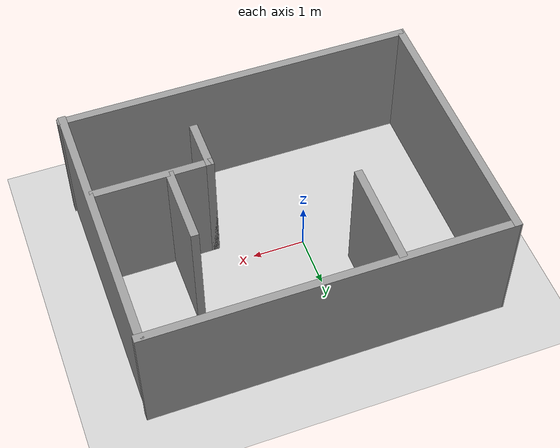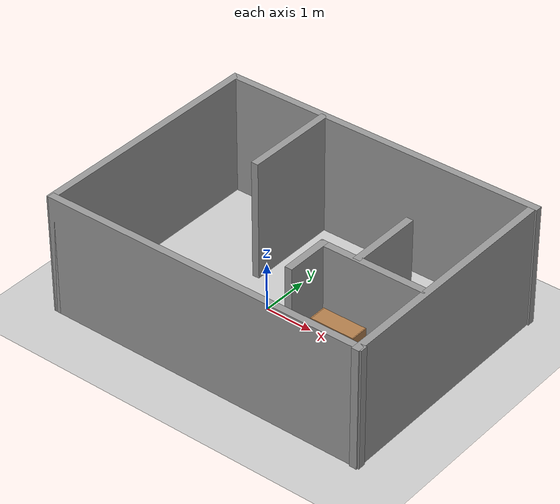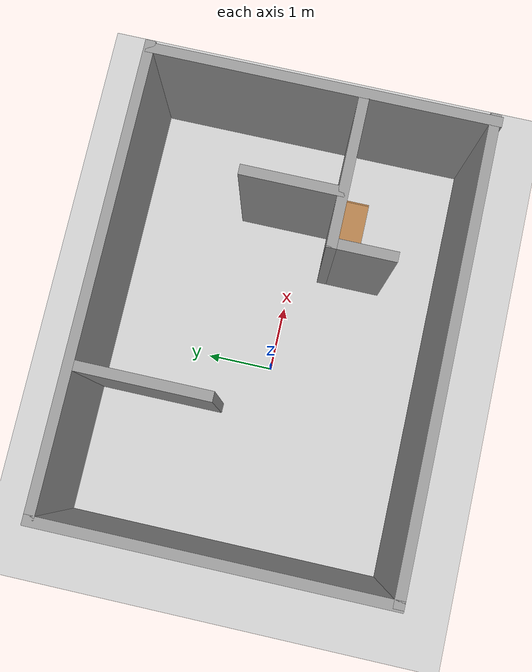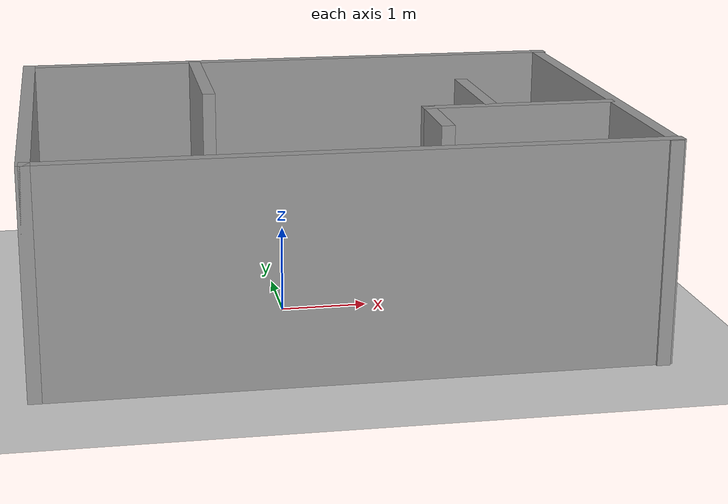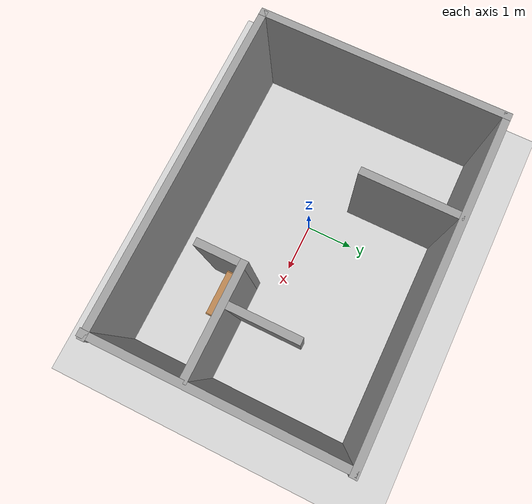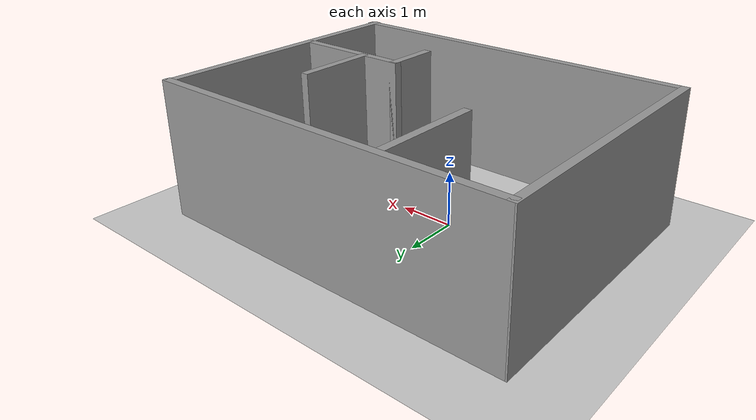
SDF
<sdf version="1.7">
 <world name="default">
  <light name="sun" type="directional">
   <pose>0 0 10 0 -0 0</pose>
   <diffuse>0.8 0.8 0.8 1</diffuse>
   <specular>0.2 0.2 0.2 1</specular>
   <attenuation>
    <range>1000</range>
    <constant>0.9</constant>
    <linear>0.01</linear>
    <quadratic>0.001</quadratic>
   </attenuation>
   <direction>-0.5 0.1 -0.9</direction>
   <spot><inner_angle>0</inner_angle><outer_angle>0</outer_angle><falloff>0</falloff></spot>
  </light>
  <model name="ground_plane">
   <static>1</static>
   <link name="link">
    <collision name="collision">
     <geometry><plane><normal>0 0 1</normal><size>100 100</size></plane></geometry>
     <surface><friction><ode><mu>100</mu><mu2>50</mu2></ode></friction></surface>
    </collision>
    <visual name="visual">
     <cast_shadows>0</cast_shadows>
     <geometry><plane><normal>0 0 1</normal><size>100 100</size></plane></geometry>
     <material>
      <script><uri>file://media/materials/scripts/gazebo.material</uri><name>Gazebo/Grey</name></script>
     </material>
    </visual>
   </link>
  </model>
  <gravity>0 0 -9.8</gravity>
  <magnetic_field>6e-06 2.3e-05 -4.2e-05</magnetic_field>
  <atmosphere type="adiabatic"/>
  <physics type="ode">
   <max_step_size>0.001</max_step_size>
   <real_time_factor>1</real_time_factor>
   <real_time_update_rate>1000</real_time_update_rate>
  </physics>
  <scene><ambient>0.4 0.4 0.4 1</ambient><background>0.7 0.7 0.7 1</background><shadows>1</shadows></scene>
  <audio><device>default</device></audio>
  <spherical_coordinates>
   <surface_model>EARTH_WGS84</surface_model>
   <latitude_deg>0</latitude_deg>
   <longitude_deg>0</longitude_deg>
   <elevation>0</elevation>
   <heading_deg>0</heading_deg>
  </spherical_coordinates>
  <model name="room_small">
   <pose>0.483704 0.122981 0 0 -0 0</pose>
   <link name="Wall_10">
    <collision name="Wall_10_Collision">
     <geometry><box><size>5.09069 0.15 2.5</size></box></geometry>
     <pose>0 0 1.25 0 -0 0</pose>
    </collision>
    <visual name="Wall_10_Visual">
     <pose>0 0 1.25 0 -0 0</pose>
     <geometry><box><size>5.09069 0.15 2.5</size></box></geometry>
     <material>
      <script><uri>file://media/materials/scripts/gazebo.material</uri><name>Gazebo/Grey</name></script>
      <ambient>1 1 1 1</ambient>
     </material>
     <meta><layer>0</layer></meta>
    </visual>
    <pose>-3.358 0.015295 0 0 -0 -1.5708</pose>
   </link>
   <link name="Wall_12">
    <collision name="Wall_12_Collision">
     <geometry><box><size>2 0.15 2.5</size></box></geometry>
     <pose>0 0 1.25 0 -0 0</pose>
    </collision>
    <visual name="Wall_12_Visual">
     <pose>0 0 1.25 0 -0 0</pose>
     <geometry><box><size>2 0.15 2.5</size></box></geometry>
     <material>
      <script><uri>file://media/materials/scripts/gazebo.material</uri><name>Gazebo/Grey</name></script>
      <ambient>1 1 1 1</ambient>
     </material>
     <meta><layer>0</layer></meta>
    </visual>
    <pose>-1.25509 1.48817 0 0 -0 -1.5708</pose>
   </link>
   <link name="Wall_14">
    <collision name="Wall_14_Collision">
     <geometry><box><size>2.25 0.15 2.5</size></box></geometry>
     <pose>0 0 1.25 0 -0 0</pose>
    </collision>
    <visual name="Wall_14_Visual">
     <pose>0 0 1.25 0 -0 0</pose>
     <geometry><box><size>2.25 0.15 2.5</size></box></geometry>
     <material>
      <script><uri>file://media/materials/scripts/gazebo.material</uri><name>Gazebo/Grey</name></script>
      <ambient>1 1 1 1</ambient>
     </material>
     <meta><layer>0</layer></meta>
    </visual>
    <pose>2.18986 -0.612613 0 0 -0 3.14159</pose>
   </link>
   <link name="Wall_16">
    <collision name="Wall_16_Collision">
     <geometry><box><size>1 0.15 2.5</size></box></geometry>
     <pose>0 0 1.25 0 -0 0</pose>
    </collision>
    <visual name="Wall_16_Visual">
     <pose>0 0 1.25 0 -0 0</pose>
     <geometry><box><size>1 0.15 2.5</size></box></geometry>
     <material>
      <script><uri>file://media/materials/scripts/gazebo.material</uri><name>Gazebo/Grey</name></script>
      <ambient>1 1 1 1</ambient>
     </material>
     <meta><layer>0</layer></meta>
    </visual>
    <pose>1.13986 -1.03761 0 0 -0 -1.5708</pose>
   </link>
   <link name="Wall_18">
    <collision name="Wall_18_Collision">
     <geometry><box><size>1.5 0.15 2.5</size></box></geometry>
     <pose>0 0 1.25 0 -0 0</pose>
    </collision>
    <visual name="Wall_18_Visual">
     <pose>0 0 1.25 0 -0 0</pose>
     <geometry><box><size>1.5 0.15 2.5</size></box></geometry>
     <material>
      <script><uri>file://media/materials/scripts/gazebo.material</uri><name>Gazebo/Grey</name></script>
      <ambient>1 1 1 1</ambient>
     </material>
     <meta><layer>0</layer></meta>
    </visual>
    <pose>1.87563 0.111592 0 0 -0 -1.5708</pose>
   </link>
   <link name="Wall_7">
    <collision name="Wall_7_Collision">
     <geometry><box><size>6.83541 0.15 2.5</size></box></geometry>
     <pose>0 0 1.25 0 -0 0</pose>
    </collision>
    <visual name="Wall_7_Visual">
     <pose>0 0 1.25 0 -0 0</pose>
     <geometry><box><size>6.83541 0.15 2.5</size></box></geometry>
     <material>
      <script><uri>file://media/materials/scripts/gazebo.material</uri><name>Gazebo/Grey</name></script>
      <ambient>1 1 1 1</ambient>
     </material>
     <meta><layer>0</layer></meta>
    </visual>
    <pose>0.015295 -2.45505 0 0 -0 0</pose>
   </link>
   <link name="Wall_8">
    <collision name="Wall_8_Collision">
     <geometry><box><size>5.09069 0.15 2.5</size></box></geometry>
     <pose>0 0 1.25 0 -0 0</pose>
    </collision>
    <visual name="Wall_8_Visual">
     <pose>0 0 1.25 0 -0 0</pose>
     <geometry><box><size>5.09069 0.15 2.5</size></box></geometry>
     <material>
      <script><uri>file://media/materials/scripts/gazebo.material</uri><name>Gazebo/Grey</name></script>
      <ambient>1 1 1 1</ambient>
     </material>
     <meta><layer>0</layer></meta>
    </visual>
    <pose>3.32741 -0.015295 0 0 -0 1.5708</pose>
   </link>
   <link name="Wall_9">
    <collision name="Wall_9_Collision">
     <geometry><box><size>6.83541 0.15 2.5</size></box></geometry>
     <pose>0 0 1.25 0 -0 0</pose>
    </collision>
    <visual name="Wall_9_Visual">
     <pose>0 0 1.25 0 -0 0</pose>
     <geometry><box><size>6.83541 0.15 2.5</size></box></geometry>
     <material>
      <script><uri>file://media/materials/scripts/gazebo.material</uri><name>Gazebo/Grey</name></script>
      <ambient>1 1 1 1</ambient>
     </material>
     <meta><layer>0</layer></meta>
    </visual>
    <pose>0.015295 2.48564 0 0 -0 3.14159</pose>
   </link>
   <static>1</static>
  </model>
  <model name="bookshelf">
   <static>1</static>
   <link name="link">
    <inertial><mass>1</mass></inertial>
    <collision name="back">
     <pose>0 0.005 0.6 0 -0 0</pose>
     <geometry><box><size>0.9 0.01 1.2</size></box></geometry>
    </collision>
    <visual name="visual1">
     <pose>0 0.005 0.6 0 -0 0</pose>
     <geometry><box><size>0.9 0.01 1.2</size></box></geometry>
     <material>
      <script><uri>file://media/materials/scripts/gazebo.material</uri><name>Gazebo/Wood</name></script>
     </material>
    </visual>
    <collision name="left_side">
     <pose>0.45 -0.195 0.6 0 -0 0</pose>
     <geometry><box><size>0.02 0.4 1.2</size></box></geometry>
    </collision>
    <visual name="visual2">
     <pose>0.45 -0.195 0.6 0 -0 0</pose>
     <geometry><box><size>0.02 0.4 1.2</size></box></geometry>
     <material>
      <script><uri>file://media/materials/scripts/gazebo.material</uri><name>Gazebo/Wood</name></script>
     </material>
    </visual>
    <collision name="right_side">
     <pose>-0.45 -0.195 0.6 0 -0 0</pose>
     <geometry><box><size>0.02 0.4 1.2</size></box></geometry>
    </collision>
    <visual name="visual3">
     <pose>-0.45 -0.195 0.6 0 -0 0</pose>
     <geometry><box><size>0.02 0.4 1.2</size></box></geometry>
     <material>
      <script><uri>file://media/materials/scripts/gazebo.material</uri><name>Gazebo/Wood</name></script>
     </material>
    </visual>
    <collision name="bottom">
     <pose>0 -0.195 0.03 0 -0 0</pose>
     <geometry><box><size>0.88 0.4 0.06</size></box></geometry>
    </collision>
    <visual name="visual4">
     <pose>0 -0.195 0.03 0 -0 0</pose>
     <geometry><box><size>0.88 0.4 0.06</size></box></geometry>
     <material>
      <script><uri>file://media/materials/scripts/gazebo.material</uri><name>Gazebo/Wood</name></script>
     </material>
    </visual>
    <collision name="top">
     <pose>0 -0.195 1.19 0 -0 0</pose>
     <geometry><box><size>0.88 0.4 0.02</size></box></geometry>
    </collision>
    <visual name="visual5">
     <pose>0 -0.195 1.19 0 -0 0</pose>
     <geometry><box><size>0.88 0.4 0.02</size></box></geometry>
     <material>
      <script><uri>file://media/materials/scripts/gazebo.material</uri><name>Gazebo/Wood</name></script>
     </material>
    </visual>
    <collision name="low_shelf">
     <pose>0 -0.195 0.43 0 -0 0</pose>
     <geometry><box><size>0.88 0.4 0.02</size></box></geometry>
    </collision>
    <visual name="visual6">
     <pose>0 -0.195 0.43 0 -0 0</pose>
     <geometry><box><size>0.88 0.4 0.02</size></box></geometry>
     <material>
      <script><uri>file://media/materials/scripts/gazebo.material</uri><name>Gazebo/Wood</name></script>
     </material>
    </visual>
    <collision name="high_shelf">
     <pose>0 -0.195 0.8 0 -0 0</pose>
     <geometry><box><size>0.88 0.4 0.02</size></box></geometry>
    </collision>
    <visual name="visual7">
     <pose>0 -0.195 0.8 0 -0 0</pose>
     <geometry><box><size>0.88 0.4 0.02</size></box></geometry>
     <material>
      <script><uri>file://media/materials/scripts/gazebo.material</uri><name>Gazebo/Wood</name></script>
     </material>
    </visual>
   </link>
   <pose>2.17245 -0.5334 0 0 -0 0</pose>
  </model>
 </world>
</sdf>
